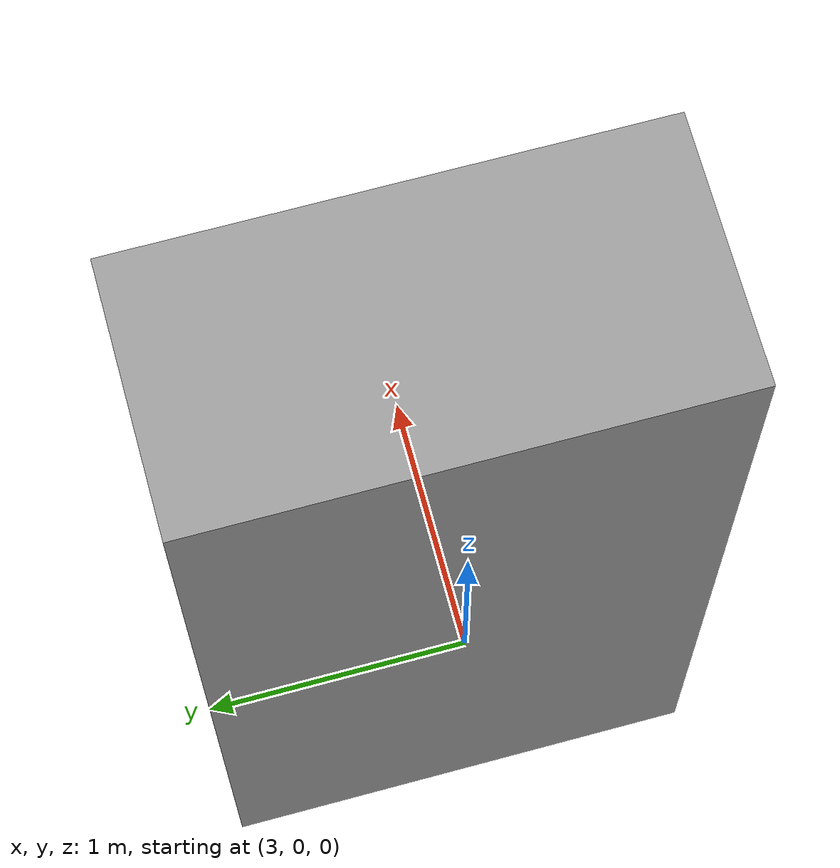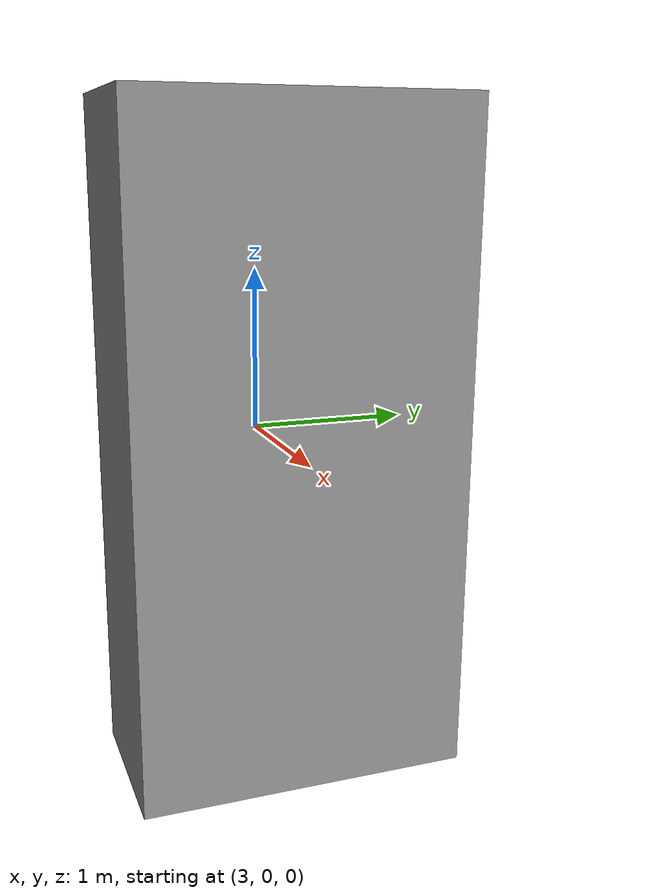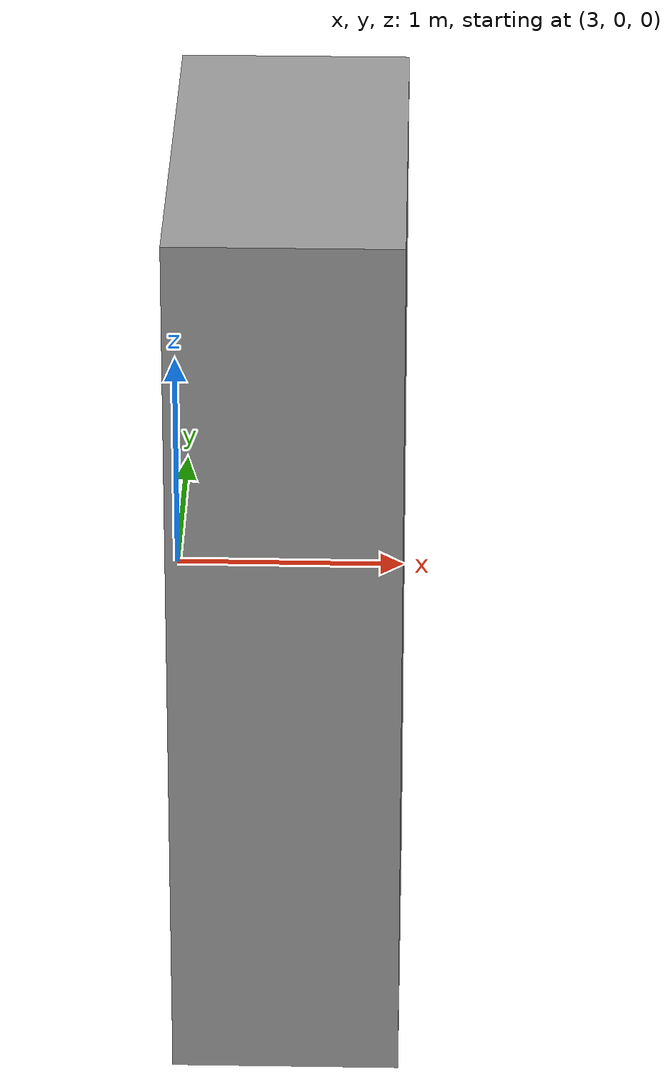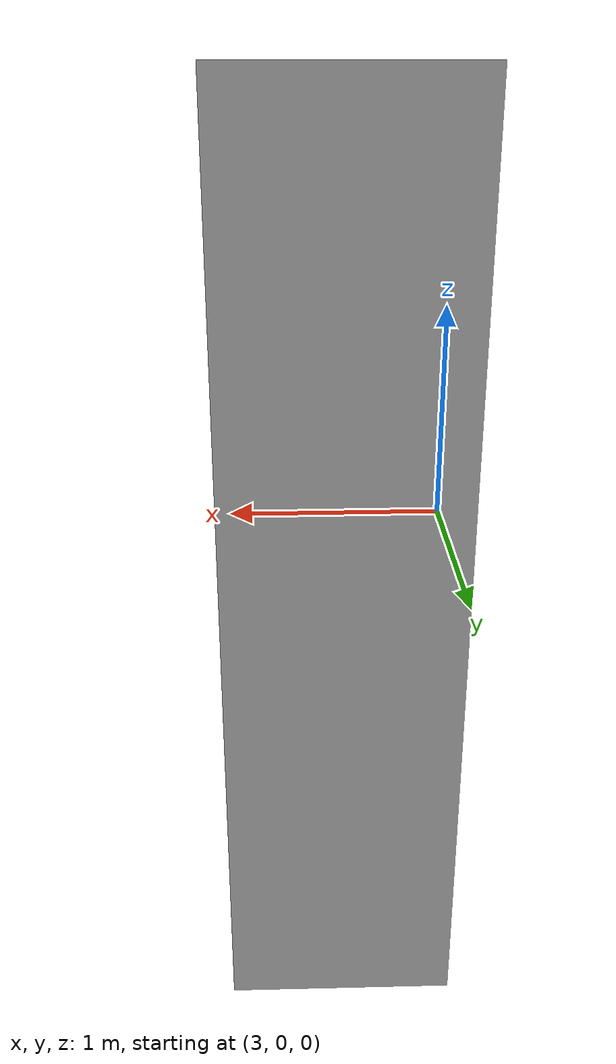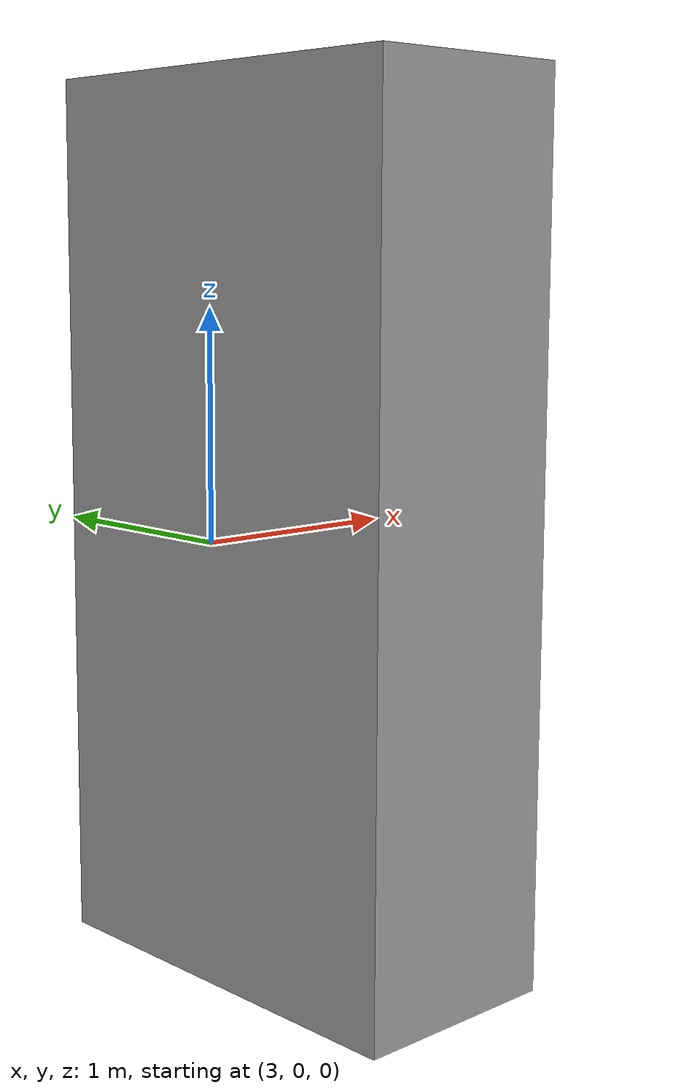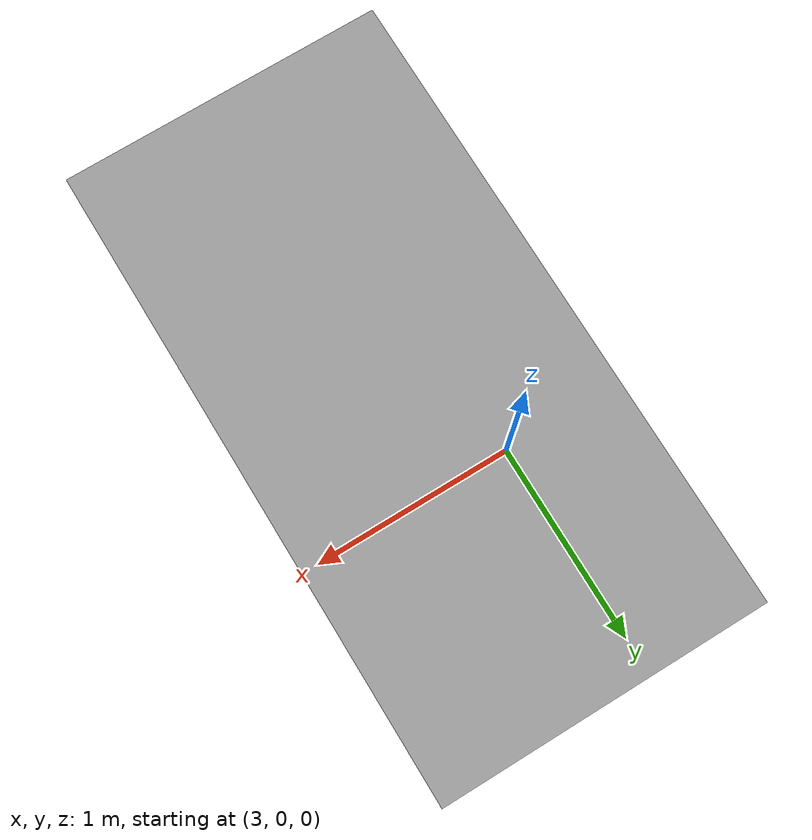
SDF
<?xml version="1.0" ?>
<sdf version="1.4">

	<model name='unit_box'>
      <pose frame=''>3.5 0 0 0 0 0</pose>
      <link name='unit_box_link'>
        <inertial>
          <mass>1</mass>
          <inertia>
            <ixx>0.166667</ixx>
            <ixy>0</ixy>
            <ixz>0</ixz>
            <iyy>0.166667</iyy>
            <iyz>0</iyz>
            <izz>0.166667</izz>
          </inertia>
        </inertial>
        <collision name='collision'>
          <geometry>
            <box>
              <size>1 2 4</size>
            </box>
          </geometry>
          <max_contacts>10</max_contacts>
          <surface>
            <contact>
              <ode/>
            </contact>
            <bounce/>
            <friction>
              <torsional>
                <ode/>
              </torsional>
              <ode/>
            </friction>
          </surface>
        </collision>
        <visual name='visual'>
          <geometry>
            <box>
              <size>1 2 4</size>
            </box>
          </geometry>
          <material>
            <script>
              <name>Gazebo/Grey</name>
              <uri>file://media/materials/scripts/gazebo.material</uri>
            </script>
          </material>
        </visual>
        <self_collide>0</self_collide>
        <enable_wind>0</enable_wind>
        <kinematic>0</kinematic>
      </link>
    </model>

</sdf>
